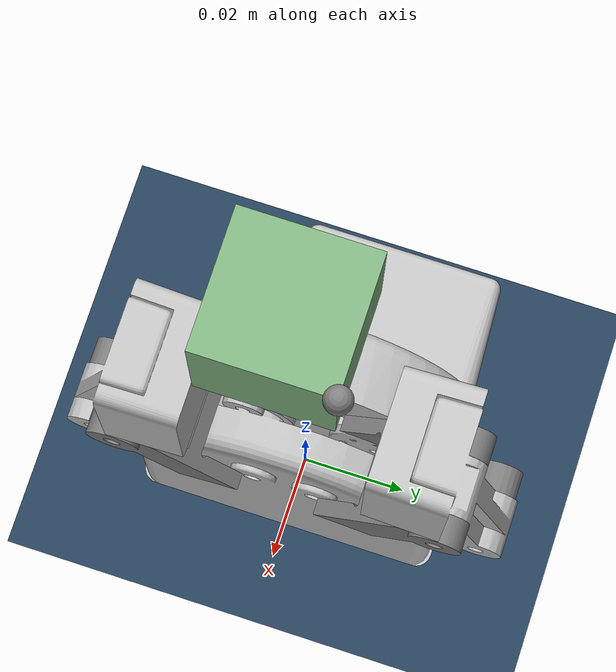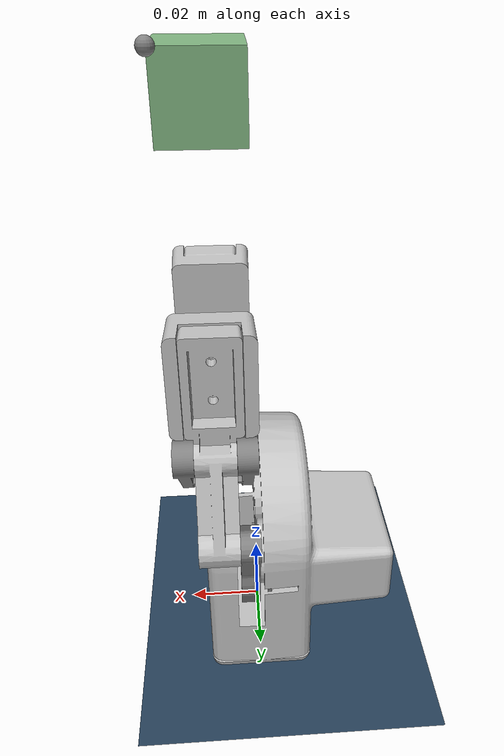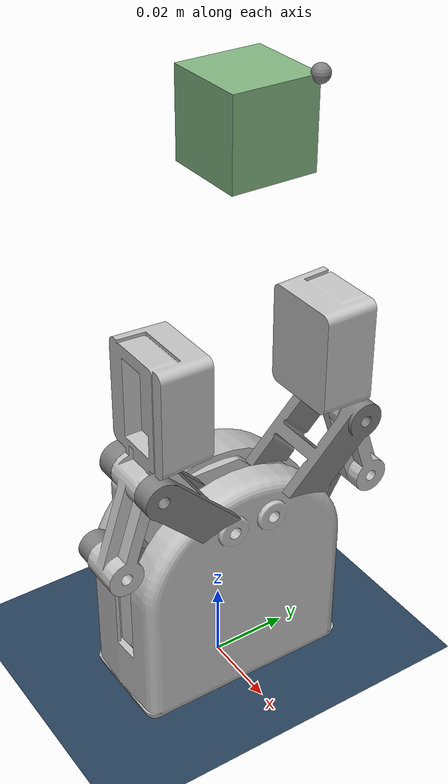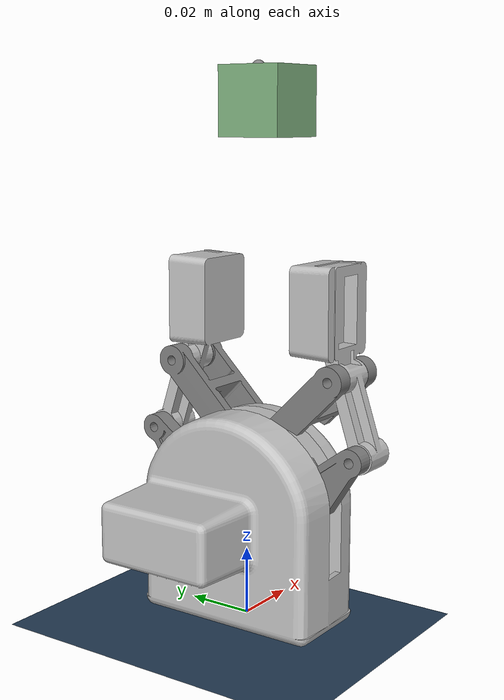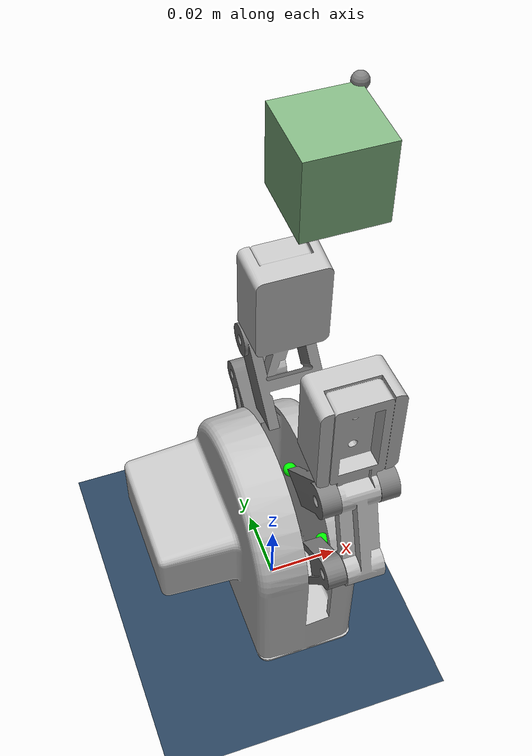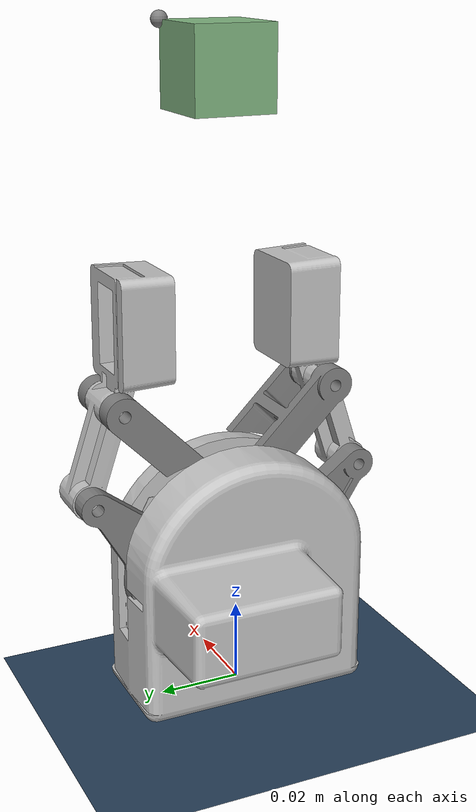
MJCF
<mujoco model="eGripper scene">
  <include file="../mjcf/elephant.xml"/>

  <!-- Add some fluid viscosity to prevent the hanging box from jiggling forever -->
  <option viscosity="0.1"/>

  <statistic center="0 0 0.05" extent="0.3"/>

  <visual>
    <headlight diffuse="0.6 0.6 0.6" ambient="0.3 0.3 0.3" specular="0 0 0"/>
    <rgba haze="0.15 0.25 0.35 1"/>
    <global azimuth="60" elevation="-20"/>
  </visual>

  <asset>
    <texture type="skybox" builtin="gradient" rgb1="0.3 0.5 0.7" rgb2="0 0 0" width="512" height="3072"/>
    <texture type="2d" name="groundplane" builtin="checker" mark="edge" rgb1="0.2 0.3 0.4" rgb2="0.1 0.2 0.3" markrgb="0.8 0.8 0.8" width="300" height="300"/>
    <material name="groundplane" texture="groundplane" texuniform="true" texrepeat="5 5" reflectance="0.2"/>
  </asset>

  <worldbody>
    <light pos="0 0 1"/>
    <light pos="0 -0.2 1" dir="0 0.2 -0.8" directional="true"/>
    <geom name="floor" size="0 0 0.05" type="plane" material="groundplane"/>
    <site size="0.002" pos="0.01 0 0.15" name="anchor"/>
    <body name="object" pos="0.01 0 0.15">
      <freejoint/>
      <geom type="box" size="0.01 0.01 0.01" rgba=".5 .7 .5 1" friction=".5" priority="1"/>
      <site size="0.002" pos="0.01 0.01 0.01" name="hook"/>
    </body>
  </worldbody>

  <tendon>
    <spatial limited="true" range="0 0.03" width="0.001">
      <site site="hook"/>
      <site site="anchor"/>
    </spatial>
  </tendon>
</mujoco>

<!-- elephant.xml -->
<mujoco model="elephant_gripper">
  <option timestep="0.001" gravity="0 0 -9.80665"/>
  <compiler angle="radian" meshdir="../assets/"/>

  <asset>
    <mesh name="base_link" file="gripper_base_link.STL"/>
    <mesh name="l_link_1" file="gripper_l_link_1.STL"/>
    <mesh name="l_link_2" file="gripper_l_link_2.STL"/>
    <mesh name="r_link_1" file="gripper_r_link_1.STL"/>
    <mesh name="r_link_2" file="gripper_r_link_2.STL"/>
    <mesh name="l_link_3" file="gripper_l_link_3.STL"/>
    <mesh name="r_link_3" file="gripper_r_link_3.STL"/>
  </asset>

  <contact>
    <exclude body1="l_link_2" body2="l_link_3"/>
    <exclude body1="l_link_2" body2="l_link_1"/>
    <exclude body1="l_link_1" body2="l_link_3"/>
    <exclude body1="l_link_1" body2="r_link_1"/>
    <exclude body1="l_link_1" body2="r_link_2"/>
    <exclude body1="l_link_1" body2="r_link_3"/>
    <exclude body1="LballB" body2="l_link_2"/>
    <exclude body1="RballB" body2="r_link_2"/>

    <exclude body1="r_link_2" body2="r_link_3"/>
    <exclude body1="r_link_2" body2="r_link_1"/>
    <exclude body1="r_link_1" body2="r_link_3"/>
    <exclude body1="handbase" body2="l_link_1"/>
    <exclude body1="handbase" body2="l_link_2"/>
    <exclude body1="handbase" body2="l_link_3"/>
    <exclude body1="handbase" body2="r_link_1"/>
    <exclude body1="handbase" body2="r_link_2"/>
    <exclude body1="handbase" body2="r_link_3"/>
  </contact>

  <worldbody>
    <body name="handbase" pos="0 0 0" quat="1 0 0 0">
      <geom type="mesh" rgba="0.75294 0.75294 0.75294 1" mesh="base_link"/>
      <body name="l_link_1" pos="0 0 0" quat="1 0 0 0">
        <inertial pos="0.00249405 0.000667774 0.0227231" quat="0.986402 0.164348 -0.000604487 0.000576867" mass="0.0010225" diaginertia="6.16352e-08 5.22901e-08 1.27916e-08"/>
        <joint name="l_joint_1" pos="0.01 0.01325 0.0298" axis="1 0 0"/>
        <geom type="mesh" rgba="0.498039 0.498039 0.498039 1" mesh="l_link_1"/>
        <site name="lj1_site" pos="0.01 0.01325 0.0298" size="0.002" rgba="0 1 0 1" type="sphere"/>
        <body name="l_link_2" pos="0 0 0" quat="1 0 0 0">
          <inertial pos="0.005 -0.000242698 0.0344848" quat="0.70591 -0.0411173 0.0411173 0.70591" mass="0.0091567" diaginertia="1.97509e-06 1.78867e-06 3.93352e-07"/>
          <joint name="l_joint_2" pos="0.01 0.03516985 0.05171997" axis="1 0 0"/>
          <geom type="mesh" rgba="0.752941 0.752941 0.752941 1" mesh="l_link_2"/>
        </body>
      </body>
      <body name="r_link_1" pos="0 0 0" quat="1 0 0 0">
        <inertial pos="0.00249263 -0.000116357 0.0249006" quat="0.99702 -0.0771345 -0.000867314 -0.000367536" mass="0.000846765" diaginertia="3.13221e-08 2.53984e-08 8.78471e-09"/>
        <joint name="r_joint_1" pos="0.01 -0.01225 0.0298" axis="1 0 0"/>
        <geom type="mesh" rgba="0.498039 0.498039 0.498039 1" mesh="r_link_1"/>
        <site name="rj1_site" pos="0.01 -0.01225 0.0298" size="0.002" rgba="0 1 0 1" type="sphere"/>
        <body name="r_link_2" pos="0 0 0" quat="1 0 0 0">
          <inertial pos="0.005 0.000242582 0.0344848" quat="0.70591 0.0411185 -0.0411185 0.70591" mass="0.0091567" diaginertia="1.97509e-06 1.78867e-06 3.93352e-07"/>
          <joint name="r_joint_2" pos="0.01 -0.03416985 0.05171997" axis="1 0 0"/>
          <geom type="mesh" rgba="0.752941 0.752941 0.752941 1" mesh="r_link_2"/>
        </body>
      </body>
      <body name="l_link_3" pos="0 0 0" quat="1 0 0 0">
        <inertial pos="0.00309099 -0.00011836 0.0221007" quat="0.707092 0.00346058 0.0270198 0.706597" mass="0.00238423" diaginertia="2.43328e-07 1.40407e-07 1.3392e-07"/>
        <joint name="l_joint_3" pos="0.01 0.006 0.05163" axis="1 0 0"/>
        <geom type="mesh" rgba="0.498039 0.498039 0.498039 1" mesh="l_link_3"/>
        <body name="LballB" pos="0.01 0.02791985 0.07354997">
          <geom type="sphere" size="0.001" rgba="0 1 0 1" />
          <joint name="lj_LballBx" type="hinge" pos="0 0 0" axis="1 0 0" />
          <joint name="lj_LballBy" type="hinge" pos="0 0 0" axis="0 1 0" />
        </body>
      </body>
      <body name="r_link_3" pos="0 0 0" quat="1 0 0 0">
        <inertial pos="0.00310901 0.00011836 0.0221007" quat="0.707092 -0.00346058 -0.0270198 0.706597" mass="0.00238423" diaginertia="2.43328e-07 1.40407e-07 1.3392e-07"/>
        <joint name="r_joint_3" pos="0.01 -0.005 0.05163" axis="1 0 0"/>
        <geom type="mesh" rgba="0.498039 0.498039 0.498039 1" mesh="r_link_3"/>
        <body name="RballB" pos="0.01 -0.02691985 0.07354997">
          <geom type="sphere" size="0.001" rgba="0 1 0 1" />
          <joint name="lj_RballBx" type="hinge" pos="0 0 0" axis="1 0 0" />
          <joint name="lj_RballBy" type="hinge" pos="0 0 0" axis="0 1 0" />
        </body>
      </body>
    </body>
  </worldbody>

  <actuator>
    <position name="handmotor" joint="l_joint_1" kp="0.05" kv="0.001"/>
  </actuator>

  <equality>
    <joint name="opposite_motion" joint1="l_joint_1" joint2="r_joint_1" polycoef="0 -1 0 0"/>
    <connect name="connect1" body1="l_link_2" body2="LballB" anchor="0.01 0.02791985 0.07354997" active="true"/>
    <connect name="connect2" body1="r_link_2" body2="RballB" anchor="0.01 -0.02691985 0.07354997" active="true"/>
  </equality>

</mujoco>
